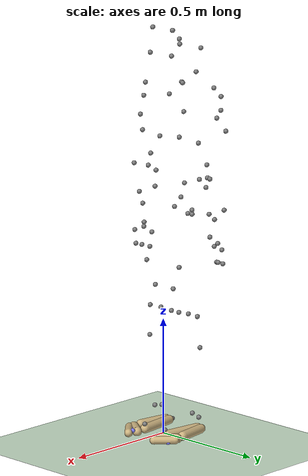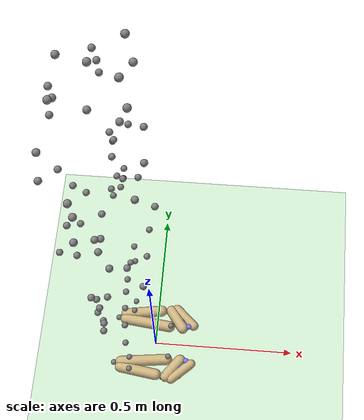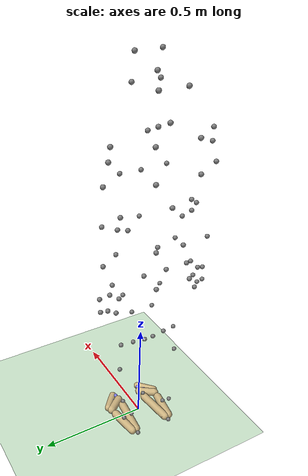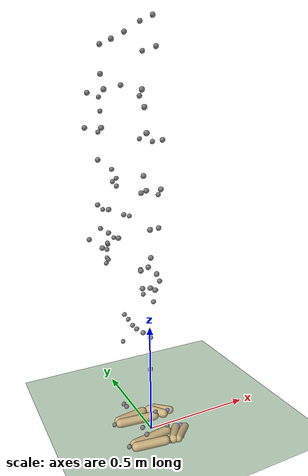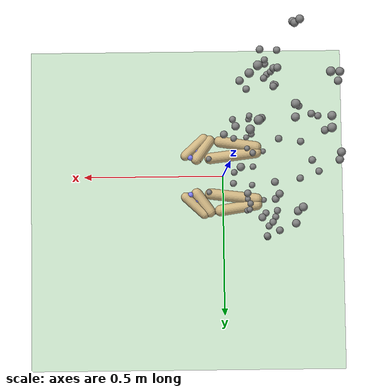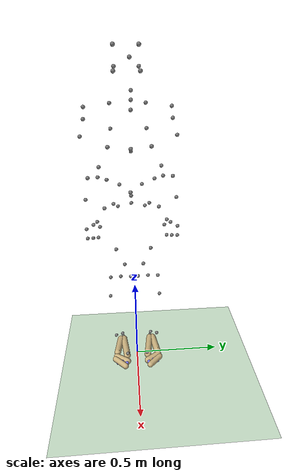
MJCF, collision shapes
<mujoco model="GZ_DW_sub01">
  <compiler angle="radian" boundmass="0.001" boundinertia="0.001"/>
  <option timestep="0.00416667" iterations="1" ls_iterations="4">
    <flag eulerdamp="disable" warmstart="disable"/>
  </option>
  <size njmax="1000" nconmax="400" nuser_jnt="1"/>
  <default class="main">
    <joint stiffness="1" limited="true" armature="0.01" damping="1"/>
    <geom contype="0" conaffinity="0" margin="0.001" rgba="0.8 0.6 0.4 1"/>
    <site size="0.001 0.005 0.005"/>
    <tendon limited="false" width="0.001" rgba="0.95 0.3 0.3 1"/>
    <general ctrllimited="true" ctrlrange="-1 1"/>
    <default class="coll">
      <geom type="capsule" contype="1" group="1" rgba="0.8 0.7 0.5 1" margin="0.001"/>
    </default>
  </default>
  <asset>
    <texture type="skybox" builtin="gradient" rgb1="0.4 0.5 0.6" rgb2="0 0 0" width="100" height="600"/>
    <texture type="cube" name="texgeom" builtin="flat" mark="cross" rgb1="0.8 0.6 0.4" rgb2="0.8 0.6 0.4" markrgb="1 1 1" width="127" height="762"/>
    <texture type="2d" name="texplane" builtin="checker" rgb1="0.2 0.3 0.4" rgb2="0.1 0.15 0.2" width="100" height="100"/>
    <material name="MatPlane" texture="texplane" texuniform="true" reflectance="0.5"/>
    <material name="geom" texture="texgeom" texuniform="true"/>
    <mesh name="sacrum" file="meshes/sacrum.stl" scale="1.02105 1.02105 1.02105"/>
    <mesh name="pelvis" file="meshes/pelvis.stl" scale="1.02105 1.02105 1.02105"/>
    <mesh name="l_pelvis" file="meshes/l_pelvis.stl" scale="1.02105 1.02105 1.02105"/>
    <mesh name="femur_r" file="meshes/femur_r.stl" scale="0.908907 0.908907 0.908907"/>
    <mesh name="tibia_r" file="meshes/tibia_r.stl" scale="1.11668 1.11668 1.11668"/>
    <mesh name="fibula_r" file="meshes/fibula_r.stl" scale="1.11668 1.11668 1.11668"/>
    <mesh name="talus_rv" file="meshes/talus_rv.stl" scale="1.11668 1.11668 1.11668"/>
    <mesh name="foot" file="meshes/foot.stl" scale="1.06552 1.06552 1.06552"/>
    <mesh name="bofoot" file="meshes/bofoot.stl" scale="1.06552 1.06552 1.06552"/>
    <mesh name="femur_l" file="meshes/femur_l.stl" scale="0.908907 0.908907 0.908907"/>
    <mesh name="tibia_l" file="meshes/tibia_l.stl" scale="1.11668 1.11668 1.11668"/>
    <mesh name="fibula_l" file="meshes/fibula_l.stl" scale="1.11668 1.11668 1.11668"/>
    <mesh name="talus_lv" file="meshes/talus_lv.stl" scale="1.11668 1.11668 1.11668"/>
    <mesh name="l_foot" file="meshes/l_foot.stl" scale="1.06552 1.06552 1.06552"/>
    <mesh name="l_bofoot" file="meshes/l_bofoot.stl" scale="1.06552 1.06552 1.06552"/>
    <mesh name="hat_spine" file="meshes/hat_spine.stl" scale="1.07736 1.07736 1.07736"/>
    <mesh name="hat_jaw" file="meshes/hat_jaw.stl" scale="1.07736 1.07736 1.07736"/>
    <mesh name="hat_skull" file="meshes/hat_skull.stl" scale="1.07736 1.07736 1.07736"/>
    <mesh name="hat_ribs_scap" file="meshes/hat_ribs_scap.stl" scale="1.07736 1.07736 1.07736"/>
    <mesh name="humerus_rv" file="meshes/humerus_rv.stl" scale="1.17477 1.17477 1.17477"/>
    <mesh name="ulna_rv" file="meshes/ulna_rv.stl" scale="1.10827 1.10827 1.10827"/>
    <mesh name="radius_rv" file="meshes/radius_rv.stl" scale="1.10827 1.10827 1.10827"/>
    <mesh name="pisiform_rvs" file="meshes/pisiform_rvs.stl" scale="0.905691 0.905691 0.905691"/>
    <mesh name="lunate_rvs" file="meshes/lunate_rvs.stl" scale="0.905691 0.905691 0.905691"/>
    <mesh name="scaphoid_rvs" file="meshes/scaphoid_rvs.stl" scale="0.905691 0.905691 0.905691"/>
    <mesh name="triquetrum_rvs" file="meshes/triquetrum_rvs.stl" scale="0.905691 0.905691 0.905691"/>
    <mesh name="hamate_rvs" file="meshes/hamate_rvs.stl" scale="0.905691 0.905691 0.905691"/>
    <mesh name="capitate_rvs" file="meshes/capitate_rvs.stl" scale="0.905691 0.905691 0.905691"/>
    <mesh name="trapezoid_rvs" file="meshes/trapezoid_rvs.stl" scale="0.905691 0.905691 0.905691"/>
    <mesh name="trapezium_rvs" file="meshes/trapezium_rvs.stl" scale="0.905691 0.905691 0.905691"/>
    <mesh name="metacarpal2_rvs" file="meshes/metacarpal2_rvs.stl" scale="0.905691 0.905691 0.905691"/>
    <mesh name="index_proximal_rvs" file="meshes/index_proximal_rvs.stl" scale="0.905691 0.905691 0.905691"/>
    <mesh name="index_medial_rvs" file="meshes/index_medial_rvs.stl" scale="0.905691 0.905691 0.905691"/>
    <mesh name="index_distal_rvs" file="meshes/index_distal_rvs.stl" scale="0.905691 0.905691 0.905691"/>
    <mesh name="metacarpal3_rvs" file="meshes/metacarpal3_rvs.stl" scale="0.905691 0.905691 0.905691"/>
    <mesh name="middle_proximal_rvs" file="meshes/middle_proximal_rvs.stl" scale="0.905691 0.905691 0.905691"/>
    <mesh name="middle_medial_rvs" file="meshes/middle_medial_rvs.stl" scale="0.905691 0.905691 0.905691"/>
    <mesh name="middle_distal_rvs" file="meshes/middle_distal_rvs.stl" scale="0.905691 0.905691 0.905691"/>
    <mesh name="metacarpal4_rvs" file="meshes/metacarpal4_rvs.stl" scale="0.905691 0.905691 0.905691"/>
    <mesh name="ring_proximal_rvs" file="meshes/ring_proximal_rvs.stl" scale="0.905691 0.905691 0.905691"/>
    <mesh name="ring_medial_rvs" file="meshes/ring_medial_rvs.stl" scale="0.905691 0.905691 0.905691"/>
    <mesh name="ring_distal_rvs" file="meshes/ring_distal_rvs.stl" scale="0.905691 0.905691 0.905691"/>
    <mesh name="metacarpal5_rvs" file="meshes/metacarpal5_rvs.stl" scale="0.905691 0.905691 0.905691"/>
    <mesh name="little_proximal_rvs" file="meshes/little_proximal_rvs.stl" scale="0.905691 0.905691 0.905691"/>
    <mesh name="little_medial_rvs" file="meshes/little_medial_rvs.stl" scale="0.905691 0.905691 0.905691"/>
    <mesh name="little_distal_rvs" file="meshes/little_distal_rvs.stl" scale="0.905691 0.905691 0.905691"/>
    <mesh name="metacarpal1_rvs" file="meshes/metacarpal1_rvs.stl" scale="0.905691 0.905691 0.905691"/>
    <mesh name="thumb_proximal_rvs" file="meshes/thumb_proximal_rvs.stl" scale="0.905691 0.905691 0.905691"/>
    <mesh name="thumb_distal_rvs" file="meshes/thumb_distal_rvs.stl" scale="0.905691 0.905691 0.905691"/>
    <mesh name="humerus_lv" file="meshes/humerus_lv.stl" scale="1.17477 1.17477 1.17477"/>
    <mesh name="ulna_lv" file="meshes/ulna_lv.stl" scale="1.10827 1.10827 1.10827"/>
    <mesh name="radius_lv" file="meshes/radius_lv.stl" scale="1.10827 1.10827 1.10827"/>
    <mesh name="pisiform_lvs" file="meshes/pisiform_lvs.stl" scale="0.905691 0.905691 0.905691"/>
    <mesh name="lunate_lvs" file="meshes/lunate_lvs.stl" scale="0.905691 0.905691 0.905691"/>
    <mesh name="scaphoid_lvs" file="meshes/scaphoid_lvs.stl" scale="0.905691 0.905691 0.905691"/>
    <mesh name="triquetrum_lvs" file="meshes/triquetrum_lvs.stl" scale="0.905691 0.905691 0.905691"/>
    <mesh name="hamate_lvs" file="meshes/hamate_lvs.stl" scale="0.905691 0.905691 0.905691"/>
    <mesh name="capitate_lvs" file="meshes/capitate_lvs.stl" scale="0.905691 0.905691 0.905691"/>
    <mesh name="trapezoid_lvs" file="meshes/trapezoid_lvs.stl" scale="0.905691 0.905691 0.905691"/>
    <mesh name="trapezium_lvs" file="meshes/trapezium_lvs.stl" scale="0.905691 0.905691 0.905691"/>
    <mesh name="metacarpal2_lvs" file="meshes/metacarpal2_lvs.stl" scale="0.905691 0.905691 0.905691"/>
    <mesh name="index_proximal_lvs" file="meshes/index_proximal_lvs.stl" scale="0.905691 0.905691 0.905691"/>
    <mesh name="index_medial_lvs" file="meshes/index_medial_lvs.stl" scale="0.905691 0.905691 0.905691"/>
    <mesh name="index_distal_lvs" file="meshes/index_distal_lvs.stl" scale="0.905691 0.905691 0.905691"/>
    <mesh name="metacarpal3_lvs" file="meshes/metacarpal3_lvs.stl" scale="0.905691 0.905691 0.905691"/>
    <mesh name="middle_proximal_lvs" file="meshes/middle_proximal_lvs.stl" scale="0.905691 0.905691 0.905691"/>
    <mesh name="middle_medial_lvs" file="meshes/middle_medial_lvs.stl" scale="0.905691 0.905691 0.905691"/>
    <mesh name="middle_distal_lvs" file="meshes/middle_distal_lvs.stl" scale="0.905691 0.905691 0.905691"/>
    <mesh name="metacarpal4_lvs" file="meshes/metacarpal4_lvs.stl" scale="0.905691 0.905691 0.905691"/>
    <mesh name="ring_proximal_lvs" file="meshes/ring_proximal_lvs.stl" scale="0.905691 0.905691 0.905691"/>
    <mesh name="ring_medial_lvs" file="meshes/ring_medial_lvs.stl" scale="0.905691 0.905691 0.905691"/>
    <mesh name="ring_distal_lvs" file="meshes/ring_distal_lvs.stl" scale="0.905691 0.905691 0.905691"/>
    <mesh name="metacarpal5_lvs" file="meshes/metacarpal5_lvs.stl" scale="0.905691 0.905691 0.905691"/>
    <mesh name="little_proximal_lvs" file="meshes/little_proximal_lvs.stl" scale="0.905691 0.905691 0.905691"/>
    <mesh name="little_medial_lvs" file="meshes/little_medial_lvs.stl" scale="0.905691 0.905691 0.905691"/>
    <mesh name="little_distal_lvs" file="meshes/little_distal_lvs.stl" scale="0.905691 0.905691 0.905691"/>
    <mesh name="metacarpal1_lvs" file="meshes/metacarpal1_lvs.stl" scale="0.905691 0.905691 0.905691"/>
    <mesh name="thumb_proximal_lvs" file="meshes/thumb_proximal_lvs.stl" scale="0.905691 0.905691 0.905691"/>
    <mesh name="thumb_distal_lvs" file="meshes/thumb_distal_lvs.stl" scale="0.905691 0.905691 0.905691"/>
  </asset>
  <worldbody>
    <geom name="floor" size="500 500 0.125" type="plane" contype="1" conaffinity="1" group="2" material="MatPlane" rgba="0.8 0.9 0.8 1"/>
    <light pos="0 0 1.3" dir="0 0 -1" directional="true" castshadow="false" cutoff="100" exponent="1" diffuse="1 1 1" specular="0.1 0.1 0.1"/>
    <body name="pelvis" pos="0 0 0.975" quat="0.707107 0.707107 0 0">
      <inertial pos="-0.0721882 0 0" mass="13.573" diaginertia="0.123517 0.104653 0.0695686"/>
      <joint name="pelvis_tx" pos="0 0 0" axis="1 0 0" type="slide" stiffness="0" limited="false" range="-500 500" armature="0" damping="0"/>
      <joint name="pelvis_tz" pos="0 0 0" axis="0 0 1" type="slide" stiffness="0" limited="false" range="-300 300" armature="0" damping="0"/>
      <joint name="pelvis_ty" pos="0 0 0" axis="0 1 0" type="slide" stiffness="0" limited="false" range="-100 200" armature="0" damping="0"/>
      <joint name="pelvis_tilt" pos="0 0 0" axis="0 0 1" stiffness="0" limited="false" range="-1.5708 1.5708" armature="0" damping="0"/>
      <joint name="pelvis_list" pos="0 0 0" axis="1 0 0" stiffness="0" limited="false" range="-1.5708 1.5708" armature="0" damping="0"/>
      <joint name="pelvis_rotation" pos="0 0 0" axis="0 1 0" stiffness="0" limited="false" range="-1.5708 1.5708" armature="0" damping="0"/>
      <geom name="sacrum" type="mesh" mesh="sacrum"/>
      <geom name="pelvis" type="mesh" mesh="pelvis"/>
      <geom name="l_pelvis" type="mesh" mesh="l_pelvis"/>
      <site name="rasis" pos="-0.0219389 -0.00227135 0.143841" size="0.01"/>
      <site name="lasis" pos="-0.0219389 -0.00227135 -0.143841" size="0.01"/>
      <site name="rpsis" pos="-0.190785 0.0705299 0.0625177" size="0.01"/>
      <site name="lpsis" pos="-0.190785 0.0705299 -0.0625177" size="0.01"/>
      <site name="CHip" pos="-0.105673 0.0334961 0.000910482" size="0.01"/>
      <site name="RHip" pos="-0.169805 -0.0346575 0.10081" size="0.01"/>
      <site name="LHip" pos="-0.169805 -0.0346575 -0.10081" size="0.01"/>
      <site name="mhip" pos="-0.172699 -0.0336121 0.00126933" size="0.01"/>
      <site name="rbum" pos="-0.22695 -0.0711889 0.0781376" size="0.01"/>
      <site name="lbum" pos="-0.22695 -0.0711889 -0.0781376" size="0.01"/>
      <camera name="track" pos="0 0 4" mode="trackcom"/>
      <light name="spotlight" pos="0 10 2" dir="0 -1 0" mode="trackcom"/>
      <body name="femur_r" pos="-0.0721882 -0.0674914 0.0852576">
        <inertial pos="0 -0.154514 0" quat="0.5 0.5 -0.5 0.5" mass="10.7199" diaginertia="0.134436 0.127486 0.0334185"/>
        <joint name="hip_flexion_r" pos="0 0 0" axis="0 0 1" stiffness="10" range="-0.787 2.0944" damping="5"/>
        <joint name="hip_adduction_r" pos="0 0 0" axis="1 0 0" stiffness="10" range="-0.524 0.524" damping="5"/>
        <joint name="hip_rotation_r" pos="0 0 0" axis="0 1 0" stiffness="20" range="-2.0944 2.0944" damping="5"/>
        <geom name="femur_r" type="mesh" mesh="femur_r"/>
        <site name="rthigh" pos="-0.00674545 -0.0342306 0.106869" size="0.01"/>
        <site name="rfrontthigh" pos="0.076145 -0.166172 0.0094889" size="0.01"/>
        <site name="rfrontinnerthigh" pos="0.0678635 -0.267824 -0.0331186" size="0.01"/>
        <body name="tibia_r" pos="-0.00167398 -0.365545 0">
          <inertial pos="0 -0.208485 0" quat="0.5 0.5 -0.5 0.5" mass="4.27289" diaginertia="0.073438 0.072432 0.00732943"/>
          <joint name="knee_angle_r" pos="0 0 0" axis="0 0 1" range="-2.7925 0.174533"/>
          <geom name="tibia_r" type="mesh" mesh="tibia_r"/>
          <geom name="fibula_r" type="mesh" mesh="fibula_r"/>
          <site name="RKnee" pos="0.00728611 -0.0175738 -0.00496484" size="0.01"/>
          <site name="rknem" pos="0.013188 -0.0170056 0.0531986" size="0.01"/>
          <site name="rinnerknee" pos="0.00344908 -0.0227503 -0.0633382" size="0.01"/>
          <site name="rshin" pos="0.00642417 -0.151537 0.062612" size="0.01"/>
          <body name="talus_r" pos="0 -0.480173 0">
            <inertial pos="0 0 0" mass="0.11525" diaginertia="0.00143714 0.00143714 0.00143714"/>
            <joint name="ankle_angle_r" pos="0 0 0" axis="-0.105014 -0.174022 0.979126" stiffness="10" range="-1.5708 1.5708"/>
            <geom name="talus_rv" type="mesh" mesh="talus_rv"/>
            <site name="rankm" pos="-0.00609146 0.0174918 0.0446369" size="0.01"/>
            <site name="RAnkle" pos="-0.00819541 0.0267856 0.00464904" size="0.01"/>
            <body name="calcn_r" pos="-0.0544606 -0.0468448 0.00884412">
              <inertial pos="0.106552 0.0319656 0" quat="0 0.707107 0 0.707107" mass="1.44062" diaginertia="0.00536472 0.00510303 0.00183186"/>
              <joint name="subtalar_angle_r" pos="0 0 0" axis="0.78718 0.604747 -0.120949" range="-1.5708 1.5708"/>
              <geom name="r_foot" type="mesh" mesh="foot"/>
              <geom name="r_foot_col1" class="coll" size="0.02 0.0831039" pos="0.0925 0 -0.02" quat="0.6632 0 0.748442 0"/>
              <geom name="r_foot_col3" class="coll" size="0.02 0.0657647" pos="0.075 0 0.02" quat="0.758965 0 0.651131 0"/>
              <site name="RHeel" pos="-0.0161672 -0.00123484 -0.00612689" size="0.01"/>
              <site name="rfifthmetatarsal" pos="0.163141 -0.00757232 0.034868" size="0.01"/>
              <site name="rfirstmetatarsal" pos="0.180635 0.0222052 -0.0342573" size="0.01"/>
              <site name="RFoot" pos="0.220955 0.00145429 -0.00538186" size="0.01" rgba="0.5 0.5 1 1"/>
              <body name="toes_r" pos="0.190515 -0.00213104 0.00115076">
                <inertial pos="0.036867 0.00639311 -0.0186466" quat="0 0.707107 0 0.707107" mass="0.249631" diaginertia="0.00130847 0.001 0.001"/>
                <joint name="mtp_angle_r" pos="0 0 0" axis="-0.580954 0 0.813936" range="-1.5708 1.5708"/>
                <geom name="r_bofoot" type="mesh" mesh="bofoot"/>
                <geom name="r_bofoot_col1" class="coll" size="0.0175 0.045" pos="0.04 0 0.01" quat="0.400864 0 0.916138 0"/>
                <geom name="r_bofoot_col2" class="coll" size="0.02 0.04" pos="0.01 0 0" quat="0.305011 0 0.952349 0"/>
                <site name="RBigToe" pos="0.0557709 0.00815447 -0.0283971" size="0.01" rgba="0.5 0.5 1 1"/>
                <site name="rfourthtoe" pos="0.0334301 -0.00868028 0.0257094" size="0.01" rgba="0.5 0.5 1 1"/>
              </body>
            </body>
          </body>
        </body>
      </body>
      <body name="femur_l" pos="-0.0721882 -0.0674914 -0.0852576">
        <inertial pos="0 -0.154514 0" quat="0.5 0.5 -0.5 0.5" mass="10.7199" diaginertia="0.134436 0.127486 0.0334185"/>
        <joint name="hip_flexion_l" pos="0 0 0" axis="0 0 1" stiffness="10" range="-0.787 2.0944" damping="5"/>
        <joint name="hip_adduction_l" pos="0 0 0" axis="-1 0 0" stiffness="10" range="-0.524 0.524" damping="5"/>
        <joint name="hip_rotation_l" pos="0 0 0" axis="0 -1 0" stiffness="20" range="-2.0944 2.0944" damping="5"/>
        <geom name="femur_l" type="mesh" mesh="femur_l"/>
        <site name="lthigh" pos="-0.00674545 -0.0342306 -0.106869" size="0.01"/>
        <site name="lfrontthigh" pos="0.076145 -0.166172 -0.0094889" size="0.01"/>
        <site name="lfrontinnerthigh" pos="0.0678635 -0.267824 0.0331186" size="0.01"/>
        <body name="tibia_l" pos="-0.00167398 -0.365545 0">
          <inertial pos="0 -0.208485 0" quat="0.5 0.5 -0.5 0.5" mass="4.27289" diaginertia="0.073438 0.072432 0.00732943"/>
          <joint name="knee_angle_l" pos="0 0 0" axis="0 0 1" range="-2.7925 0.174533"/>
          <geom name="tibia_l" type="mesh" mesh="tibia_l"/>
          <geom name="fibula_l" type="mesh" mesh="fibula_l"/>
          <site name="LKnee" pos="0.00728611 -0.0175738 0.00496484" size="0.01"/>
          <site name="lknem" pos="0.013188 -0.0170056 -0.0531986" size="0.01"/>
          <site name="linnerknee" pos="0.00344908 -0.0227503 0.0633382" size="0.01"/>
          <site name="lshin" pos="0.00642417 -0.151537 -0.062612" size="0.01"/>
          <body name="talus_l" pos="0 -0.480173 0">
            <inertial pos="0 0 0" mass="0.11525" diaginertia="0.00143714 0.00143714 0.00143714"/>
            <joint name="ankle_angle_l" pos="0 0 0" axis="0.105014 0.174022 0.979126" stiffness="10" range="-1.0472 1.0472"/>
            <geom name="talus_lv" type="mesh" mesh="talus_lv"/>
            <site name="lankm" pos="-0.00609146 0.0174918 -0.0446369" size="0.01"/>
            <site name="LAnkle" pos="-0.00819541 0.0267856 -0.00464904" size="0.01"/>
            <body name="calcn_l" pos="-0.0544606 -0.0468448 -0.00884412">
              <inertial pos="0.106552 0.0319656 0" quat="0 0.707107 0 0.707107" mass="1.44062" diaginertia="0.00536472 0.00510303 0.00183186"/>
              <joint name="subtalar_angle_l" pos="0 0 0" axis="-0.78718 -0.604747 -0.120949" range="-1.5708 1.5708"/>
              <geom name="l_foot" type="mesh" mesh="l_foot"/>
              <geom name="l_foot_col1" class="coll" size="0.02 0.0831039" pos="0.0925 0 0.02" quat="0.748442 0 0.6632 0"/>
              <geom name="l_foot_col3" class="coll" size="0.02 0.0657647" pos="0.075 0 -0.02" quat="0.651131 0 0.758965 0"/>
              <site name="LHeel" pos="-0.0161672 -0.00123484 0.00612689" size="0.01"/>
              <site name="lfifthmetatarsal" pos="0.163141 -0.00757232 -0.034868" size="0.01"/>
              <site name="lfirstmetatarsal" pos="0.180635 0.0222052 0.0342573" size="0.01"/>
              <site name="LFoot" pos="0.220955 0.00145429 0.00538186" size="0.01" rgba="0.5 0.5 1 1"/>
              <body name="toes_l" pos="0.190515 -0.00213104 -0.00115076">
                <inertial pos="0.036867 0.00639311 0.0186466" quat="0 0.707107 0 0.707107" mass="0.249631" diaginertia="0.00130847 0.001 0.001"/>
                <joint name="mtp_angle_l" pos="0 0 0" axis="0.580954 0 0.813936" range="-1.0472 1.0472"/>
                <geom name="l_bofoot" type="mesh" mesh="l_bofoot"/>
                <geom name="l_bofoot_col1" class="coll" size="0.0175 0.045" pos="0.04 0 -0.01" quat="0.400864 0 -0.916138 0"/>
                <geom name="l_bofoot_col2" class="coll" size="0.02 0.04" pos="0.01 0 0" quat="0.305011 0 -0.952349 0"/>
                <site name="LBigToe" pos="0.0557709 0.00815447 0.0283971" size="0.01" rgba="0.5 0.5 1 1"/>
                <site name="lfourthtoe" pos="0.0334301 -0.00868028 -0.0257094" size="0.01" rgba="0.5 0.5 1 1"/>
              </body>
            </body>
          </body>
        </body>
      </body>
      <body name="torso" pos="-0.10282 0.0832155 0">
        <inertial pos="-0.0323208 0.344755 0" quat="0.707107 0.707107 0 0" mass="30.9177" diaginertia="1.97246 1.9148 1.01064"/>
        <joint name="lumbar_extension" pos="0 0 0" axis="0 0 1" stiffness="10" range="-1.5708 0.377" damping="5"/>
        <joint name="lumbar_bending" pos="0 0 0" axis="1 0 0" stiffness="10" range="-0.754 0.754" damping="5"/>
        <joint name="lumbar_rotation" pos="0 0 0" axis="0 1 0" stiffness="20" range="-0.754 0.754" damping="5"/>
        <geom name="hat_spine" type="mesh" mesh="hat_spine"/>
        <geom name="hat_ribs_scap" type="mesh" mesh="hat_ribs_scap"/>
        <site name="sternum" pos="0.129954 0.23292 -0.00500331" size="0.01"/>
        <site name="umbilicus" pos="0.148857 0.0212547 0.00415021" size="0.01"/>
        <site name="upperback" pos="-0.0985789 0.167578 -0.00757428" size="0.01"/>
        <site name="rback" pos="-0.101555 0.414713 0.0933494" size="0.01"/>
        <site name="lback" pos="-0.101555 0.414713 -0.0933494" size="0.01"/>
        <site name="lscapula" pos="-0.116794 0.284777 -0.0958928" size="0.01"/>
        <site name="rscapula" pos="-0.116794 0.284777 0.0958928" size="0.01"/>
        <site name="rwaist" pos="0.0134005 0.11646 0.16282" size="0.01"/>
        <site name="lwaist" pos="0.0134005 0.11646 -0.16282" size="0.01"/>
        <site name="rbreast" pos="0.119027 0.241351 0.106505" size="0.01"/>
        <site name="lbreast" pos="0.119027 0.241351 -0.106505" size="0.01"/>
        <site name="rshom" pos="-0.0121523 0.408883 0.218321" size="0.01"/>
        <site name="lshom" pos="-0.0121523 0.408883 -0.218321" size="0.01"/>
        <site name="backneck" pos="-0.0722377 0.47708 -0.0185174" size="0.01"/>
        <site name="Neck" pos="0.00544366 0.44067 -0.0154065" size="0.01"/>
        <site name="clavicle" pos="0.0804364 0.404454 -0.0117544" size="0.01"/>
        <body name="head" pos="0 0.541458 0">
          <joint name="neck_extension" pos="0 0 0" axis="0 0 1" stiffness="10" range="-1.5708 0.377" damping="5"/>
          <joint name="neck_bending" pos="0 0 0" axis="1 0 0" stiffness="10" range="-0.754 0.754" damping="5"/>
          <joint name="neck_rotation" pos="0 0 0" axis="0 1 0" stiffness="20" range="-0.754 0.754" damping="5"/>
          <geom name="hat_jaw" pos="0 -0.541458 0" type="mesh" mesh="hat_jaw"/>
          <geom name="hat_skull" pos="0 -0.541458 0" type="mesh" mesh="hat_skull"/>
          <site name="Head" pos="0.025319 0.0865568 -0.0153891" size="0.01"/>
          <site name="rfronthead" pos="0.108104 0.13837 0.0568891" size="0.01"/>
          <site name="lfronthead" pos="0.108104 0.13837 -0.0568891" size="0.01"/>
          <site name="rbackhead" pos="-0.0560765 0.0443392 0.0608796" size="0.01"/>
          <site name="lbackhead" pos="-0.0560765 0.0443392 -0.0608796" size="0.01"/>
          <site name="rcheek" pos="0.118333 0.0332712 0.0611876" size="0.01"/>
          <site name="lcheek" pos="0.118333 0.0332712 -0.0611876" size="0.01"/>
        </body>
        <body name="humerus_r" pos="0.00339907 0.400239 0.183151">
          <inertial pos="0 -0.193252 0" quat="0.5 0.5 -0.5 0.5" mass="2.34246" diaginertia="0.0213276 0.0190007 0.00655464"/>
          <joint name="arm_flex_r" pos="0 0 0" axis="0 0 1" range="-1.5708 3.1416"/>
          <joint name="arm_add_r" pos="0 0 0" axis="1 0 0" range="-3.1415 1.5708"/>
          <joint name="arm_rot_r" pos="0 0 0" axis="0 1 0" range="-1.5708 1.5708"/>
          <geom name="humerus_rv" type="mesh" mesh="humerus_rv"/>
          <site name="RShoulder" pos="-0.00986901 -0.0475865 0.0400896" size="0.01"/>
          <site name="rupperarm" pos="-0.0143887 -0.13254 0.0641756" size="0.01"/>
          <body name="ulna_r" pos="0.0154412 -0.336305 -0.0112719">
            <inertial pos="0 -0.133575 0" quat="0.5 0.5 -0.5 0.5" mass="0.700144" diaginertia="0.00454826 0.00419295 0.001"/>
            <joint name="elbow_flex_r" pos="0 0 0" axis="0.226047 0.022269 0.973862" stiffness="0" range="-0.3 2.618"/>
            <geom name="ulna_rv" type="mesh" mesh="ulna_rv"/>
            <site name="relbinner" pos="-0.000399663 -0.0142889 -0.0456821" size="0.01"/>
            <site name="RElbow" pos="0 0 0" size="0.01"/>
            <site name="relbm" pos="0.0357562 0.00809211 0.0482203" size="0.01"/>
            <body name="radius_r" pos="-0.00745535 -0.0144153 0.0289071">
              <inertial pos="0 -0.133575 0" quat="0.5 0.5 -0.5 0.5" mass="0.700144" diaginertia="0.00454826 0.00419295 0.001"/>
              <joint name="pro_sup_r" pos="0 0 0" axis="0.056398 0.998406 0.001952" stiffness="0" range="-0.6 3.1415"/>
              <geom name="radius_rv" type="mesh" mesh="radius_rv"/>
              <site name="rforearm" pos="-0.0145268 -0.114758 0.0463392" size="0.01"/>
              <body name="hand_r" pos="-0.00974948 -0.261376 0.0150836">
                <inertial pos="0 -0.0725565 0" quat="0.5 0.5 -0.5 0.5" mass="0.527269" diaginertia="0.00175335 0.00116715 0.001"/>
                <joint name="wrist_flex_r" pos="0 0 0" axis="0 0 1" stiffness="0" range="-1.22173 1.22173"/>
                <joint name="wrist_dev_r" pos="0 0 0" axis="1 0 0" stiffness="0" range="-0.436332 0.610865"/>
                <geom name="pisiform_rvs" type="mesh" mesh="pisiform_rvs"/>
                <geom name="lunate_rvs" type="mesh" mesh="lunate_rvs"/>
                <geom name="scaphoid_rvs" type="mesh" mesh="scaphoid_rvs"/>
                <geom name="triquetrum_rvs" type="mesh" mesh="triquetrum_rvs"/>
                <geom name="hamate_rvs" type="mesh" mesh="hamate_rvs"/>
                <geom name="capitate_rvs" type="mesh" mesh="capitate_rvs"/>
                <geom name="trapezoid_rvs" type="mesh" mesh="trapezoid_rvs"/>
                <geom name="trapezium_rvs" type="mesh" mesh="trapezium_rvs"/>
                <geom name="metacarpal2_rvs" type="mesh" mesh="metacarpal2_rvs"/>
                <geom name="index_proximal_rvs" type="mesh" mesh="index_proximal_rvs"/>
                <geom name="index_medial_rvs" type="mesh" mesh="index_medial_rvs"/>
                <geom name="index_distal_rvs" type="mesh" mesh="index_distal_rvs"/>
                <geom name="metacarpal3_rvs" type="mesh" mesh="metacarpal3_rvs"/>
                <geom name="middle_proximal_rvs" type="mesh" mesh="middle_proximal_rvs"/>
                <geom name="middle_medial_rvs" type="mesh" mesh="middle_medial_rvs"/>
                <geom name="middle_distal_rvs" type="mesh" mesh="middle_distal_rvs"/>
                <geom name="metacarpal4_rvs" type="mesh" mesh="metacarpal4_rvs"/>
                <geom name="ring_proximal_rvs" type="mesh" mesh="ring_proximal_rvs"/>
                <geom name="ring_medial_rvs" type="mesh" mesh="ring_medial_rvs"/>
                <geom name="ring_distal_rvs" type="mesh" mesh="ring_distal_rvs"/>
                <geom name="metacarpal5_rvs" type="mesh" mesh="metacarpal5_rvs"/>
                <geom name="little_proximal_rvs" type="mesh" mesh="little_proximal_rvs"/>
                <geom name="little_medial_rvs" type="mesh" mesh="little_medial_rvs"/>
                <geom name="little_distal_rvs" type="mesh" mesh="little_distal_rvs"/>
                <geom name="metacarpal1_rvs" type="mesh" mesh="metacarpal1_rvs"/>
                <geom name="thumb_proximal_rvs" type="mesh" mesh="thumb_proximal_rvs"/>
                <geom name="thumb_distal_rvs" type="mesh" mesh="thumb_distal_rvs"/>
                <site name="rwrithumbside" pos="0.0155423 -0.0179106 0.03832" size="0.01"/>
                <site name="rwripinkieside" pos="-0.0147409 -0.0208474 -0.0339345" size="0.01"/>
                <site name="RWrist" pos="0 0 0" size="0.01"/>
                <site name="RHand" pos="0.0044447 -0.0795391 0.00687257" size="0.01"/>
                <site name="rfin" pos="-0.0157425 -0.0865746 -0.0202781" size="0.01"/>
                <site name="rthumb" pos="0.00937293 -0.0784729 0.038221" size="0.01"/>
              </body>
            </body>
          </body>
        </body>
        <body name="humerus_l" pos="0.00339907 0.400239 -0.183151">
          <inertial pos="0 -0.193252 0" quat="0.5 0.5 -0.5 0.5" mass="2.34246" diaginertia="0.0213276 0.0190007 0.00655464"/>
          <joint name="arm_flex_l" pos="0 0 0" axis="0 0 1" range="-1.5708 3.1416"/>
          <joint name="arm_add_l" pos="0 0 0" axis="-1 0 0" range="-3.1415 1.5708"/>
          <joint name="arm_rot_l" pos="0 0 0" axis="0 -1 0" range="-1.5708 1.5708"/>
          <geom name="humerus_lv" type="mesh" mesh="humerus_lv"/>
          <site name="LShoulder" pos="-0.00986901 -0.0475865 -0.0400896" size="0.01"/>
          <site name="lupperarm" pos="-0.0143887 -0.13254 -0.0641756" size="0.01"/>
          <body name="ulna_l" pos="0.0154412 -0.336305 0.0112719">
            <inertial pos="0 -0.133575 0" quat="0.5 0.5 -0.5 0.5" mass="0.700144" diaginertia="0.00454826 0.00419295 0.001"/>
            <joint name="elbow_flex_l" pos="0 0 0" axis="-0.226047 -0.022269 0.973862" stiffness="0" range="-0.3 2.618"/>
            <geom name="ulna_lv" type="mesh" mesh="ulna_lv"/>
            <site name="lelbinner" pos="-0.000399663 -0.0142889 0.0456821" size="0.01"/>
            <site name="LElbow" pos="0 0 0" size="0.01"/>
            <site name="lelbm" pos="0.0357562 0.00809211 -0.0482203" size="0.01"/>
            <body name="radius_l" pos="-0.00745535 -0.0144153 -0.0289071">
              <inertial pos="0 -0.133575 0" quat="0.5 0.5 -0.5 0.5" mass="0.700144" diaginertia="0.00454826 0.00419295 0.001"/>
              <joint name="pro_sup_l" pos="0 0 0" axis="-0.056398 -0.998406 0.001952" stiffness="0" range="-0.6 3.1415"/>
              <geom name="radius_lv" type="mesh" mesh="radius_lv"/>
              <site name="lforearm" pos="-0.0145268 -0.114758 -0.0463392" size="0.01"/>
              <body name="hand_l" pos="-0.00974948 -0.261376 -0.0150836">
                <inertial pos="0 -0.0725565 0" quat="0.5 0.5 -0.5 0.5" mass="0.527269" diaginertia="0.00175335 0.00116715 0.001"/>
                <joint name="wrist_flex_l" pos="0 0 0" axis="0 0 1" stiffness="0" range="-1.22173 1.22173"/>
                <joint name="wrist_dev_l" pos="0 0 0" axis="-1 0 0" stiffness="0" range="-0.436332 0.610865"/>
                <geom name="pisiform_lvs" type="mesh" mesh="pisiform_lvs"/>
                <geom name="lunate_lvs" type="mesh" mesh="lunate_lvs"/>
                <geom name="scaphoid_lvs" type="mesh" mesh="scaphoid_lvs"/>
                <geom name="triquetrum_lvs" type="mesh" mesh="triquetrum_lvs"/>
                <geom name="hamate_lvs" type="mesh" mesh="hamate_lvs"/>
                <geom name="capitate_lvs" type="mesh" mesh="capitate_lvs"/>
                <geom name="trapezoid_lvs" type="mesh" mesh="trapezoid_lvs"/>
                <geom name="trapezium_lvs" type="mesh" mesh="trapezium_lvs"/>
                <geom name="metacarpal2_lvs" type="mesh" mesh="metacarpal2_lvs"/>
                <geom name="index_proximal_lvs" type="mesh" mesh="index_proximal_lvs"/>
                <geom name="index_medial_lvs" type="mesh" mesh="index_medial_lvs"/>
                <geom name="index_distal_lvs" type="mesh" mesh="index_distal_lvs"/>
                <geom name="metacarpal3_lvs" type="mesh" mesh="metacarpal3_lvs"/>
                <geom name="middle_proximal_lvs" type="mesh" mesh="middle_proximal_lvs"/>
                <geom name="middle_medial_lvs" type="mesh" mesh="middle_medial_lvs"/>
                <geom name="middle_distal_lvs" type="mesh" mesh="middle_distal_lvs"/>
                <geom name="metacarpal4_lvs" type="mesh" mesh="metacarpal4_lvs"/>
                <geom name="ring_proximal_lvs" type="mesh" mesh="ring_proximal_lvs"/>
                <geom name="ring_medial_lvs" type="mesh" mesh="ring_medial_lvs"/>
                <geom name="ring_distal_lvs" type="mesh" mesh="ring_distal_lvs"/>
                <geom name="metacarpal5_lvs" type="mesh" mesh="metacarpal5_lvs"/>
                <geom name="little_proximal_lvs" type="mesh" mesh="little_proximal_lvs"/>
                <geom name="little_medial_lvs" type="mesh" mesh="little_medial_lvs"/>
                <geom name="little_distal_lvs" type="mesh" mesh="little_distal_lvs"/>
                <geom name="metacarpal1_lvs" type="mesh" mesh="metacarpal1_lvs"/>
                <geom name="thumb_proximal_lvs" type="mesh" mesh="thumb_proximal_lvs"/>
                <geom name="thumb_distal_lvs" type="mesh" mesh="thumb_distal_lvs"/>
                <site name="lwrithumbside" pos="0.0155423 -0.0179106 -0.03832" size="0.01"/>
                <site name="lwripinkieside" pos="-0.0147409 -0.0208474 0.0339345" size="0.01"/>
                <site name="LWrist" pos="0 0 0" size="0.01"/>
                <site name="LHand" pos="0.0044447 -0.0795391 -0.00687257" size="0.01"/>
                <site name="lfin" pos="-0.0157425 -0.0865746 0.0202781" size="0.01"/>
                <site name="lthumb" pos="0.00937293 -0.0784729 -0.038221" size="0.01"/>
              </body>
            </body>
          </body>
        </body>
      </body>
    </body>
  </worldbody>
  <actuator>
    <general name="mot_lumbar_ext" joint="lumbar_extension" gear="160 0 0 0 0 0"/>
    <general name="mot_lumbar_bend" joint="lumbar_bending" gear="160 0 0 0 0 0"/>
    <general name="mot_lumbar_rot" joint="lumbar_rotation" gear="100 0 0 0 0 0"/>
    <general name="mot_shoulder_flex_r" joint="arm_flex_r" gear="250 0 0 0 0 0"/>
    <general name="mot_shoulder_add_r" joint="arm_add_r" gear="250 0 0 0 0 0"/>
    <general name="mot_shoulder_rot_r" joint="arm_rot_r" gear="250 0 0 0 0 0"/>
    <general name="mot_elbow_flex_r" joint="elbow_flex_r" gear="250 0 0 0 0 0"/>
    <general name="mot_pro_sup_r" joint="pro_sup_r" gear="250 0 0 0 0 0"/>
    <general name="mot_wrist_flex_r" joint="wrist_flex_r" gear="50 0 0 0 0 0"/>
    <general name="mot_wrist_dev_r" joint="wrist_dev_r" gear="50 0 0 0 0 0"/>
    <general name="mot_shoulder_flex_l" joint="arm_flex_l" gear="250 0 0 0 0 0"/>
    <general name="mot_shoulder_add_l" joint="arm_add_l" gear="250 0 0 0 0 0"/>
    <general name="mot_shoulder_rot_l" joint="arm_rot_l" gear="250 0 0 0 0 0"/>
    <general name="mot_elbow_flex_l" joint="elbow_flex_l" gear="250 0 0 0 0 0"/>
    <general name="mot_pro_sup_l" joint="pro_sup_l" gear="250 0 0 0 0 0"/>
    <general name="mot_wrist_flex_l" joint="wrist_flex_l" gear="50 0 0 0 0 0"/>
    <general name="mot_wrist_dev_l" joint="wrist_dev_l" gear="50 0 0 0 0 0"/>
    <general name="mot_hip_flexion_r" joint="hip_flexion_r" gear="275 0 0 0 0 0"/>
    <general name="mot_hip_adduction_r" joint="hip_adduction_r" gear="530 0 0 0 0 0"/>
    <general name="mot_hip_rotation_r" joint="hip_rotation_r" gear="600 0 0 0 0 0"/>
    <general name="mot_knee_angle_r" joint="knee_angle_r" gear="600 0 0 0 0 0"/>
    <general name="mot_ankle_angle_r" joint="ankle_angle_r" gear="500 0 0 0 0 0"/>
    <general name="mot_subtalar_angle_r" joint="subtalar_angle_r" gear="50 0 0 0 0 0"/>
    <general name="mot_mtp_angle_r" joint="mtp_angle_r" gear="50 0 0 0 0 0"/>
    <general name="mot_hip_flexion_l" joint="hip_flexion_l" gear="275 0 0 0 0 0"/>
    <general name="mot_hip_adduction_l" joint="hip_adduction_l" gear="530 0 0 0 0 0"/>
    <general name="mot_hip_rotation_l" joint="hip_rotation_l" gear="600 0 0 0 0 0"/>
    <general name="mot_knee_angle_l" joint="knee_angle_l" gear="600 0 0 0 0 0"/>
    <general name="mot_ankle_angle_l" joint="ankle_angle_l" gear="500 0 0 0 0 0"/>
    <general name="mot_subtalar_angle_l" joint="subtalar_angle_l" gear="50 0 0 0 0 0"/>
    <general name="mot_mtp_angle_l" joint="mtp_angle_l" gear="50 0 0 0 0 0"/>
  </actuator>
</mujoco>
